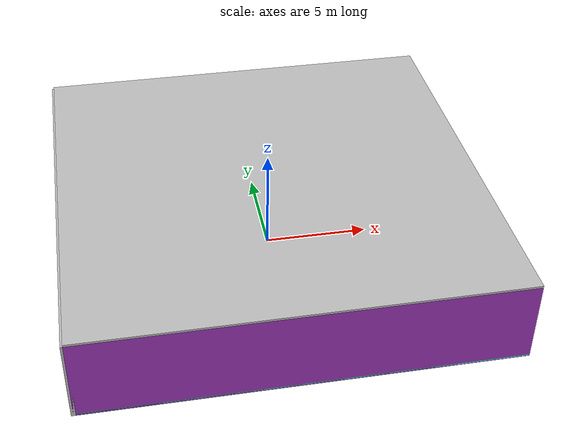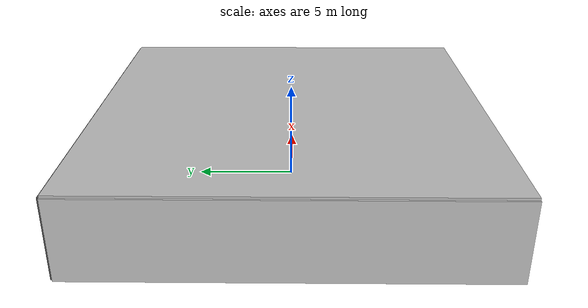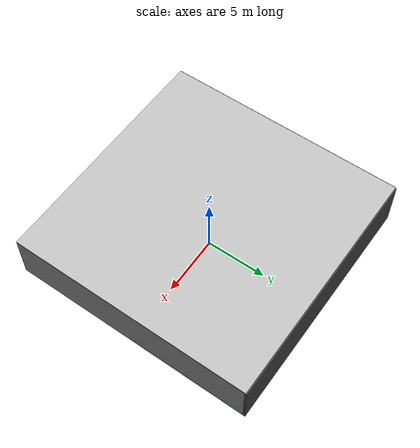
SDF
<sdf version="1.4">
 <world name="default">
  <physics type="ode">
   <max_step_size>0.001</max_step_size>
   <real_time_factor>1</real_time_factor>
   <real_time_update_rate>1000</real_time_update_rate>
   <gravity>0 0 -9.8</gravity>
  </physics>
  <scene><ambient>0.4 0.4 0.4 1</ambient><background>0.7 0.7 0.7 1</background><shadows>1</shadows></scene>
  <model name="Surrounding">
   <static>1</static>
   <link name="Ceiling">
    <collision name="Ceiling_Collision"><geometry><box><size>20 20 0.1</size></box></geometry></collision>
    <visual name="Ceiling_Visual">
     <geometry><box><size>20 20 0.1</size></box></geometry>
     <material>
      <script><uri>file://media/materials/scripts/gazebo.material</uri><name>Gazebo/LightOff</name></script>
     </material>
    </visual>
    <pose>0 0 4.05 0 0 0</pose>
   </link>
   <link name="Wall_South">
    <collision name="Wall_South_Collision">
     <geometry><box><size>20 0 4</size></box></geometry>
     <pose>0 0 2 0 -0 0</pose>
    </collision>
    <visual name="Wall_South_Visual">
     <pose>0 0 2 0 -0 0</pose>
     <geometry><box><size>20 0 4</size></box></geometry>
     <material>
      <script><uri>file://media/materials/scripts/gazebo.material</uri><name>Gazebo/Purple</name></script>
     </material>
    </visual>
    <velocity_decay><linear>0</linear><angular>0</angular></velocity_decay>
    <pose>0 -10 0 0 -0 0</pose>
   </link>
   <link name="Wall_East">
    <collision name="Wall_21_Collision">
     <geometry><box><size>20 0 4</size></box></geometry>
     <pose>0 0 2 0 -0 0</pose>
    </collision>
    <visual name="Wall_21_Visual">
     <pose>0 0 2 0 -0 0</pose>
     <geometry><box><size>20 0 4</size></box></geometry>
     <material>
      <script><uri>file://media/materials/scripts/gazebo.material</uri><name>Gazebo/GreyGradientSky</name></script>
     </material>
    </visual>
    <velocity_decay><linear>0</linear><angular>0</angular></velocity_decay>
    <pose>10 0 0 0 -0 1.5708</pose>
   </link>
   <link name="Wall_North">
    <collision name="Wall_22_Collision">
     <geometry><box><size>20 0.2 4</size></box></geometry>
     <pose>0 0 2 0 -0 0</pose>
    </collision>
    <visual name="Wall_22_Visual">
     <pose>0 0 2 0 -0 0</pose>
     <geometry><box><size>20 0.2 4</size></box></geometry>
     <material>
      <script><uri>file://media/materials/scripts/gazebo.material</uri><name>Gazebo/DarkGrey</name></script>
     </material>
    </visual>
    <velocity_decay><linear>0</linear><angular>0</angular></velocity_decay>
    <pose>0 10 0 0 -0 0</pose>
   </link>
   <link name="Wall_West">
    <collision name="Wall_23_Collision">
     <geometry><box><size>20 0.2 4</size></box></geometry>
     <pose>0 0 2 0 -0 0</pose>
    </collision>
    <visual name="Wall_23_Visual">
     <pose>0 0 2 0 -0 0</pose>
     <geometry><box><size>20 0.2 4</size></box></geometry>
     <material>
      <script><uri>file://media/materials/scripts/gazebo.material</uri><name>Gazebo/JointAnchor</name></script>
     </material>
    </visual>
    <velocity_decay><linear>0</linear><angular>0</angular></velocity_decay>
    <pose>-10 0 0 0 0 -1.5708</pose>
   </link>
   <link name="Ground_link">
    <collision name="collision">
     <pose>0 0 .05 0 -0 0</pose>
     <geometry><box><size>20 20 0.1</size></box></geometry>
    </collision>
    <visual name="visual">
     <pose>0 0 .05 0 -0 0</pose>
     <geometry><box><size>20 20 0.1</size></box></geometry>
     <material>
      <script><uri>file://media/materials/scripts/gazebo.material</uri><name>Gazebo/SkyBlue</name></script>
     </material>
    </visual>
   </link>
   <static>1</static>
  </model>
  <spherical_coordinates>
   <surface_model>EARTH_WGS84</surface_model>
   <latitude_deg>0</latitude_deg>
   <longitude_deg>0</longitude_deg>
   <elevation>0</elevation>
   <heading_deg>0</heading_deg>
  </spherical_coordinates>
  <light name="lightball_0" type="diffuse">
   <diffuse>0.8 0.8 0.8 1</diffuse>
   <specular>0.2 0.2 0.2 1</specular>
   <attenuation>
    <range>100</range>
    <constant>0.7</constant>
    <linear>0.01</linear>
    <quadratic>0.001</quadratic>
   </attenuation>
   <direction>-0.5 0.1 -0.9</direction>
   <pose>-2.3834863631 9.49416331104 1.99700730812 0 0 0</pose>
  </light>
  <light name="lightball_1" type="diffuse">
   <diffuse>0.8 0.8 0.8 1</diffuse>
   <specular>0.2 0.2 0.2 1</specular>
   <attenuation>
    <range>100</range>
    <constant>0.7</constant>
    <linear>0.01</linear>
    <quadratic>0.001</quadratic>
   </attenuation>
   <direction>-0.5 0.1 -0.9</direction>
   <pose>-1.88775789006 -6.71723845358 1.48671629365 0 0 0</pose>
  </light>
  <light name="lightball_2" type="diffuse">
   <diffuse>0.8 0.8 0.8 1</diffuse>
   <specular>0.2 0.2 0.2 1</specular>
   <attenuation>
    <range>100</range>
    <constant>0.7</constant>
    <linear>0.01</linear>
    <quadratic>0.001</quadratic>
   </attenuation>
   <direction>-0.5 0.1 -0.9</direction>
   <pose>-6.59368848929 8.9066544644 1.48772106043 0 0 0</pose>
  </light>
  <light name="lightball_3" type="diffuse">
   <diffuse>0.8 0.8 0.8 1</diffuse>
   <specular>0.2 0.2 0.2 1</specular>
   <attenuation>
    <range>100</range>
    <constant>0.7</constant>
    <linear>0.01</linear>
    <quadratic>0.001</quadratic>
   </attenuation>
   <direction>-0.5 0.1 -0.9</direction>
   <pose>-2.68387401649 -4.22050039318 2.75908426919 0 0 0</pose>
  </light>
  <light name="lightball_4" type="diffuse">
   <diffuse>0.8 0.8 0.8 1</diffuse>
   <specular>0.2 0.2 0.2 1</specular>
   <attenuation>
    <range>100</range>
    <constant>0.7</constant>
    <linear>0.01</linear>
    <quadratic>0.001</quadratic>
   </attenuation>
   <direction>-0.5 0.1 -0.9</direction>
   <pose>7.7400366251 -8.66084606361 2.56615994029 0 0 0</pose>
  </light>
  <light name="lightball_5" type="diffuse">
   <diffuse>0.8 0.8 0.8 1</diffuse>
   <specular>0.2 0.2 0.2 1</specular>
   <attenuation>
    <range>100</range>
    <constant>0.7</constant>
    <linear>0.01</linear>
    <quadratic>0.001</quadratic>
   </attenuation>
   <direction>-0.5 0.1 -0.9</direction>
   <pose>-7.5122877221 9.65727040691 3.52946585743 0 0 0</pose>
  </light>
  <light name="lightball_6" type="diffuse">
   <diffuse>0.8 0.8 0.8 1</diffuse>
   <specular>0.2 0.2 0.2 1</specular>
   <attenuation>
    <range>100</range>
    <constant>0.7</constant>
    <linear>0.01</linear>
    <quadratic>0.001</quadratic>
   </attenuation>
   <direction>-0.5 0.1 -0.9</direction>
   <pose>-4.37678860346 3.35059869826 2.09350133084 0 0 0</pose>
  </light>
  <light name="lightball_7" type="diffuse">
   <diffuse>0.8 0.8 0.8 1</diffuse>
   <specular>0.2 0.2 0.2 1</specular>
   <attenuation>
    <range>100</range>
    <constant>0.7</constant>
    <linear>0.01</linear>
    <quadratic>0.001</quadratic>
   </attenuation>
   <direction>-0.5 0.1 -0.9</direction>
   <pose>-0.616302839465 -4.03035139367 2.92171243807 0 0 0</pose>
  </light>
  <include><uri>model://cabinet</uri><pose>-6.785358845 -4.58075639185 0 0 0 1.64244290116</pose></include>
  <include><uri>model://cabinet</uri><pose>7.75147695148 -1.41936188727 0 0 0 3.05562612943</pose></include>
 </world>
</sdf>

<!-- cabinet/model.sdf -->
<sdf version="1.5">
  <model name="cabinet">
    <static>true</static>
    <link name="cabinet_bottom_plate">
      <inertial>
        <pose>0 0 -1 0 0 0</pose>
        <inertia>
          <ixx>2.050000</ixx>
          <ixy>0</ixy>
          <ixz>0</ixz>
          <iyy>2.050000</iyy>
          <iyz>0</iyz>
          <izz>2.050000</izz>
        </inertia>
        <mass>25.000000</mass>
      </inertial>
      <collision name="cabinet_bottom_plate_geom">
        <pose>0 0 0.010000 0 0 0</pose>
        <geometry>
          <box>
            <size>0.450000 0.450000 0.020000</size>
          </box>
        </geometry>
      </collision>
      <visual name="cabinet_bottom_plate_geom_visual">
        <pose>0 0 0.010000 0 0 0</pose>
        <geometry>
          <box>
            <size>0.450000 0.450000 0.020000</size>
          </box>
        </geometry>
        <material>
          <script>
            <uri>model://media/materials/scripts/gazebo.material</uri>
            <name>Gazebo/Wood</name>
          </script>
        </material>
      </visual>
      <collision name="cabinet_bottom_plate_geom_cabinet_back_plate">
        <pose>0.235000 0 0.510000 0 0 0</pose>
        <geometry>
          <box>
            <size>0.020000 0.450000 1.020000</size>
          </box>
        </geometry>
      </collision>
      <visual name="cabinet_bottom_plate_geom_cabinet_back_plate_visual">
        <pose>0.235000 0 0.510000 0 0 0</pose>
        <geometry>
          <box>
            <size>0.020000 0.450000 1.020000</size>
          </box>
        </geometry>
        <material>
          <script>
            <uri>model://media/materials/scripts/gazebo.material</uri>
            <name>Gazebo/Wood</name>
          </script>
        </material>
      </visual>
      <collision name="cabinet_bottom_plate_geom_cabinet_left_plate">
        <pose>0 0.235000 0.510000 0 0 0</pose>
        <geometry>
          <box>
            <size>0.450000 0.020000 1.020000</size>
          </box>
        </geometry>
      </collision>
      <visual name="cabinet_bottom_plate_geom_cabinet_left_plate_visual">
        <pose>0 0.235000 0.510000 0 0 0</pose>
        <geometry>
          <box>
            <size>0.450000 0.020000 1.020000</size>
          </box>
        </geometry>
        <material>
          <script>
            <uri>model://media/materials/scripts/gazebo.material</uri>
            <name>Gazebo/Wood</name>
          </script>
        </material>
      </visual>
      <collision name="cabinet_bottom_plate_geom_cabinet_middle_plate">
        <pose>0 0 0.510000 0 0 0</pose>
        <geometry>
          <box>
            <size>0.450000 0.450000 0.020000</size>
          </box>
        </geometry>
      </collision>
      <visual name="cabinet_bottom_plate_geom_cabinet_middle_plate_visual">
        <pose>0 0 0.510000 0 0 0</pose>
        <geometry>
          <box>
            <size>0.450000 0.450000 0.020000</size>
          </box>
        </geometry>
        <material>
          <script>
            <uri>model://media/materials/scripts/gazebo.material</uri>
            <name>Gazebo/Wood</name>
          </script>
        </material>
      </visual>
      <collision name="cabinet_bottom_plate_geom_cabinet_right_plate">
        <pose>0 -0.235000 0.510000 0 0 0</pose>
        <geometry>
          <box>
            <size>0.450000 0.020000 1.020000</size>
          </box>
        </geometry>
      </collision>
      <visual name="cabinet_bottom_plate_geom_cabinet_right_plate_visual">
        <pose>0 -0.235000 0.510000 0 0 0</pose>
        <geometry>
          <box>
            <size>0.450000 0.020000 1.020000</size>
          </box>
        </geometry>
        <material>
          <script>
            <uri>model://media/materials/scripts/gazebo.material</uri>
            <name>Gazebo/Wood</name>
          </script>
        </material>
      </visual>
      <collision name="cabinet_bottom_plate_geom_cabinet_top_plate">
        <pose>0 0 1.010000 0 0 0</pose>
        <geometry>
          <box>
            <size>0.450000 0.450000 0.020000</size>
          </box>
        </geometry>
      </collision>
      <visual name="cabinet_bottom_plate_geom_cabinet_top_plate_visual">
        <pose>0 0 1.010000 0 0 0</pose>
        <geometry>
          <box>
            <size>0.450000 0.450000 0.020000</size>
          </box>
        </geometry>
        <material>
          <script>
            <uri>model://media/materials/scripts/gazebo.material</uri>
            <name>Gazebo/Wood</name>
          </script>
        </material>
      </visual>
    </link>
  </model>
</sdf>
